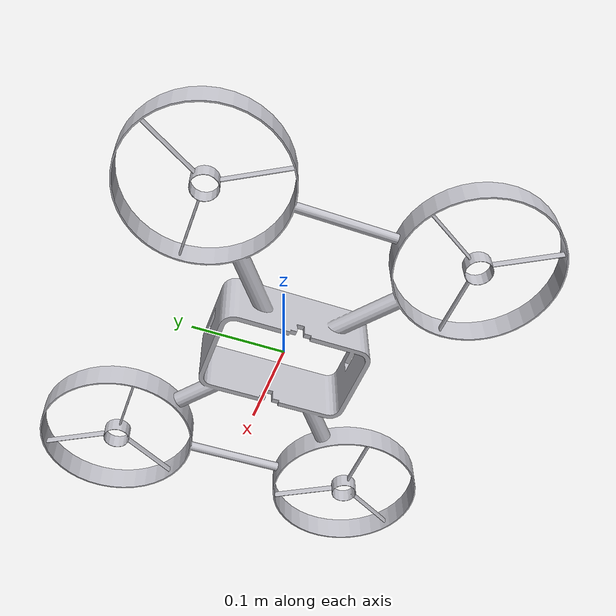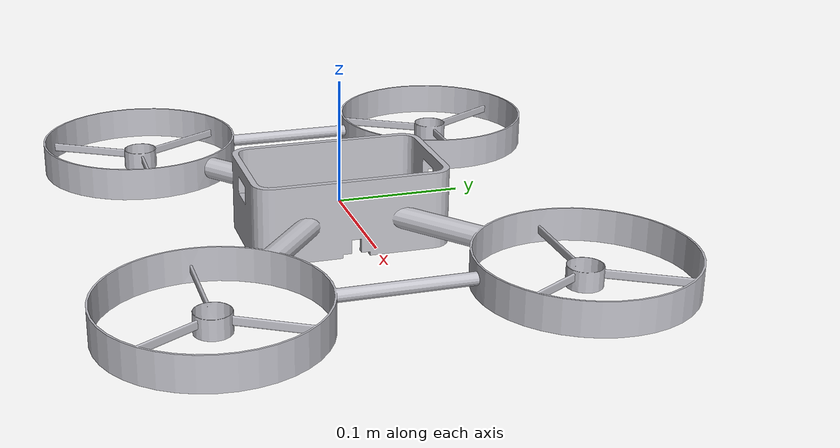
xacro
<?xml version="1.0" ?>
<robot name="FAMBot" xmlns:xacro="http://www.ros.org/wiki/xacro">

<xacro:include filename="$(find FAMBot_description)/urdf/materials.xacro" />
<xacro:include filename="$(find FAMBot_description)/urdf/FAMBot.trans" />
<xacro:include filename="$(find FAMBot_description)/urdf/FAMBot.gazebo" />
<link name="base_link">
  <inertial>
    <origin xyz="-1.2193185737384338e-07 -1.1534837804196461e-08 0.0006704947492484556" rpy="0 0 0"/>
    <mass value="0.285574836024254"/>
    <inertia ixx="0.002851" iyy="0.004131" izz="0.006865" ixy="0.0" iyz="-0.0" ixz="-0.0"/>
  </inertial>
  <visual>
    <origin xyz="0 0 0" rpy="0 0 0"/>
    <geometry>
      <mesh filename="package://FAMBot_description/meshes/base_link.stl" scale="0.001 0.001 0.001"/>
    </geometry>
    <material name="silver"/>
  </visual>
  <collision>
    <origin xyz="0 0 0" rpy="0 0 0"/>
    <geometry>
      <mesh filename="package://FAMBot_description/meshes/base_link.stl" scale="0.001 0.001 0.001"/>
    </geometry>
  </collision>
</link>

</robot>
